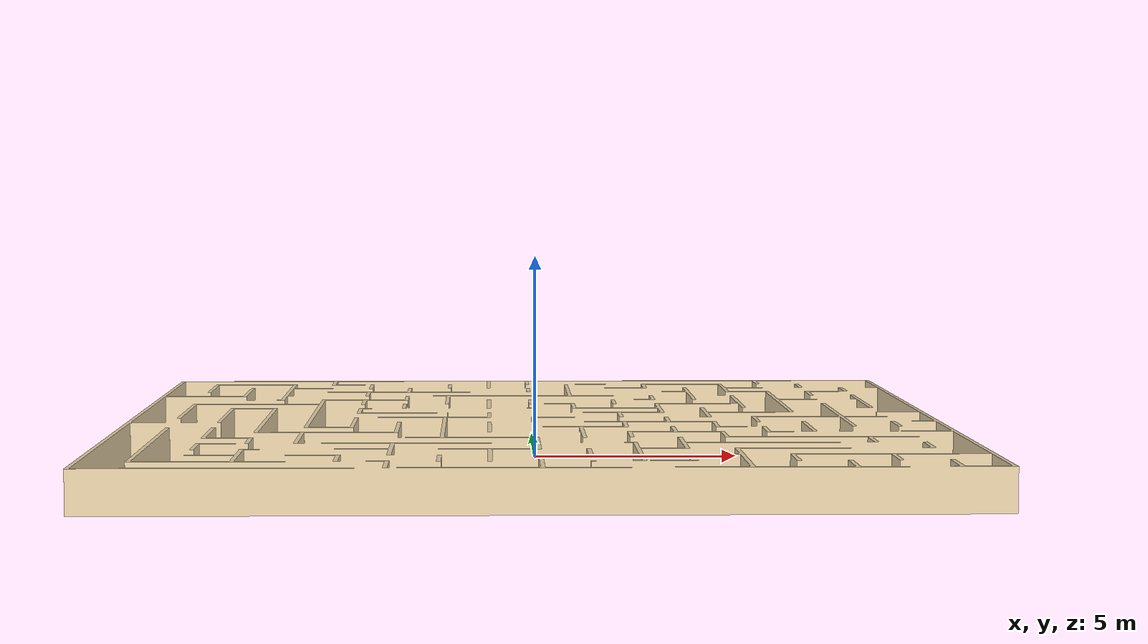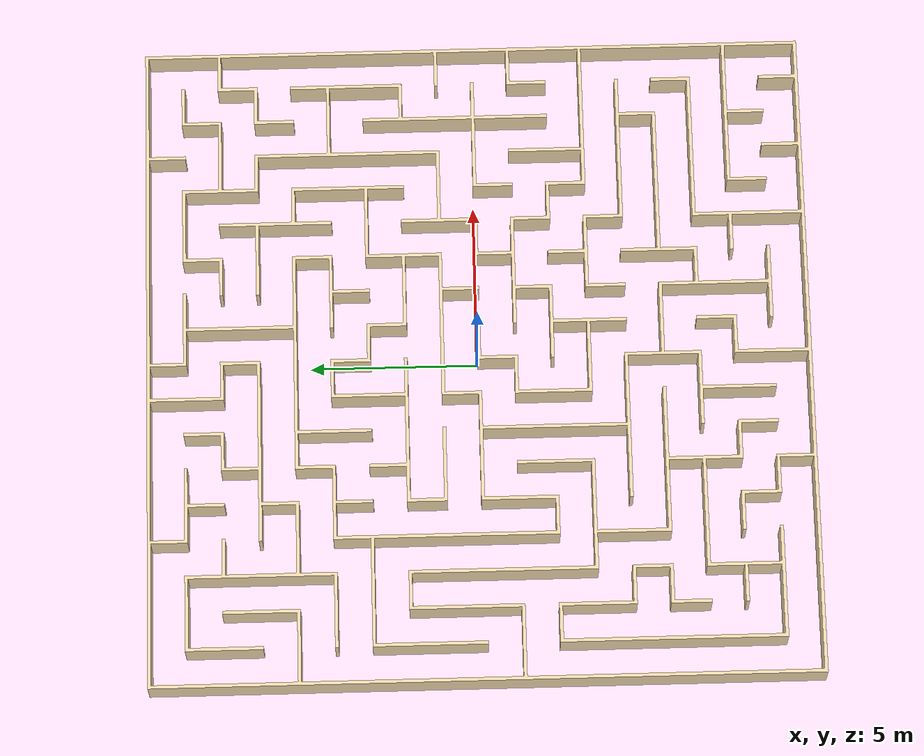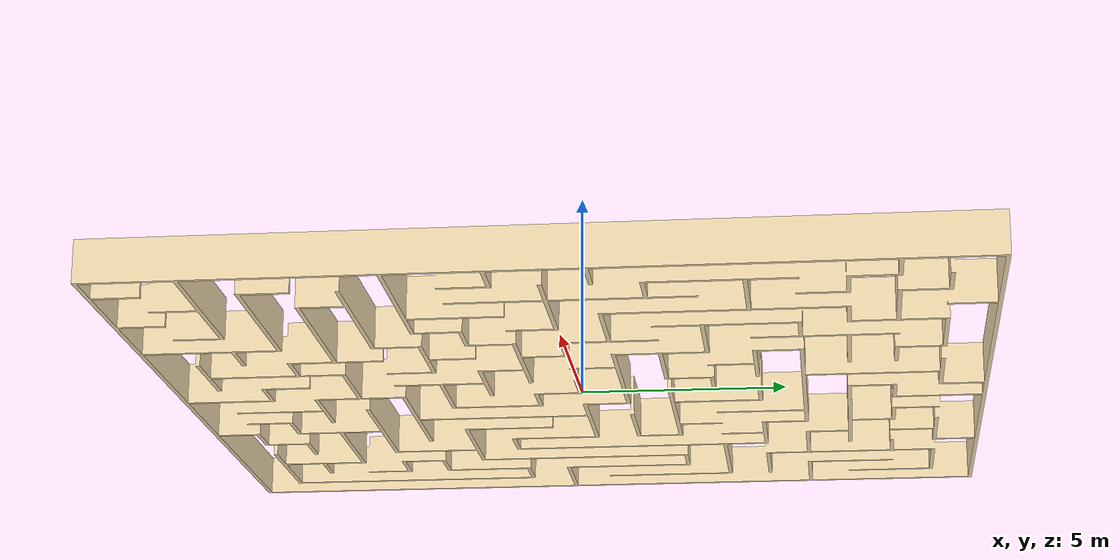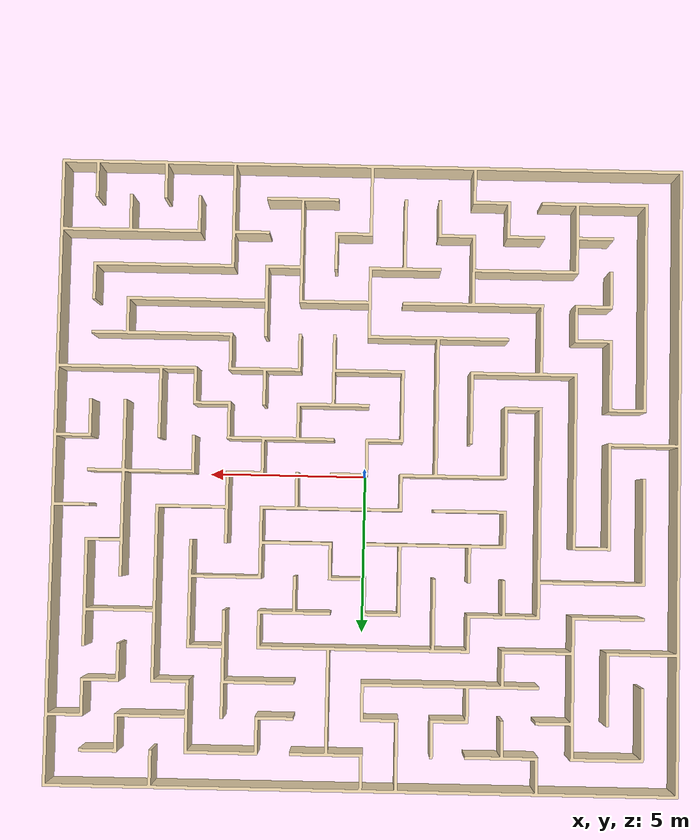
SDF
<?xml version="1.0"?>
<sdf version="1.8">
  <model name="maze">
    <static>true</static>
    <pose>-10 -10 0.0 0 0 0</pose>
    <link name="maze_link">
      <collision name="maze_collision">
        <pose>0 0 0 0 0 0</pose>
        <geometry>
          <mesh>
            <uri>meshes/maze_walls.stl</uri>
            <scale>1 1 1</scale>
          </mesh>
        </geometry>
      </collision>
      <visual name="maze_visual">
        <pose>0 0 0 0 0 0</pose>
        <geometry>
          <mesh>
            <uri>meshes/maze_walls.dae</uri>
            <scale>1 1 1</scale>
          </mesh>
        </geometry>
        <material>
          <diffuse>0.96 0.87 0.70 1</diffuse>
        </material>
      </visual>
    </link>
  </model>
</sdf>
